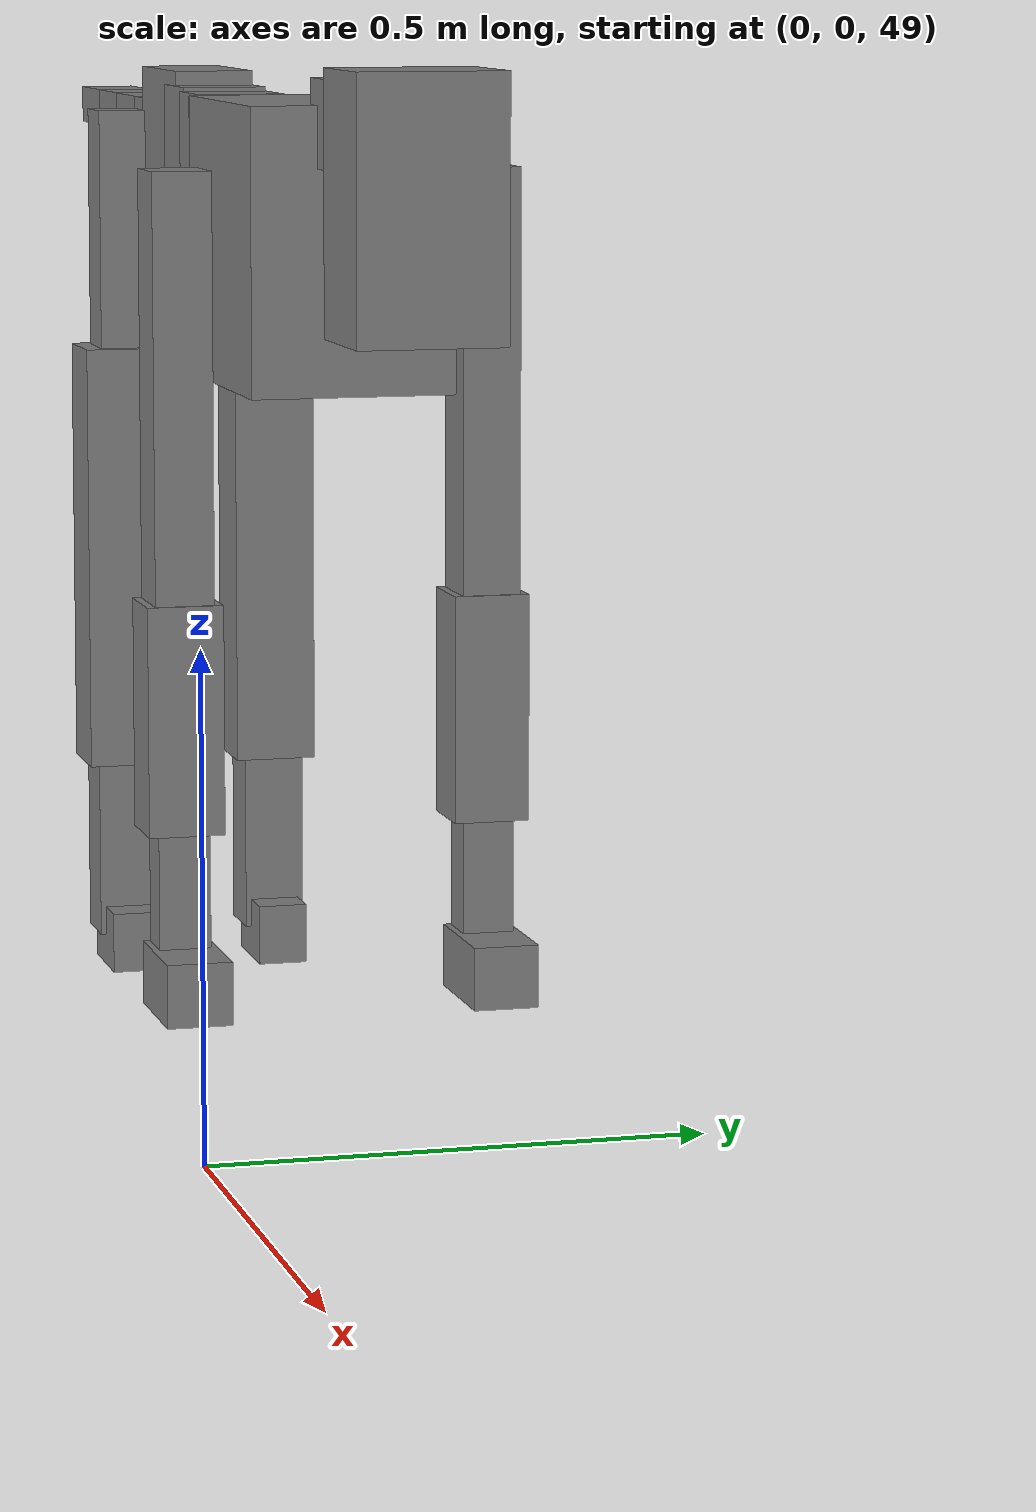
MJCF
<mujoco model="dog">

    <default>
        <joint armature="0.02" stiffness="1" damping="0.2" limited="true"/>
        <geom condim="3" friction="1 0.05 0.05" margin="0.01"/>
        <motor ctrllimited="true" ctrlrange="-1.0 1.0" forcelimited="true" gear="50"/>
    </default>

    <compiler inertiafromgeom="true" angle="radian"/>

    <option timestep="0.016" iterations="50" tolerance="1e-10" solver="Newton" jacobian="dense" cone="pyramidal"/>

    <size nconmax="20000" njmax="60000" nstack="5000000"/>
    <visual>
        <map force="0.1" zfar="30"/>
        <rgba haze="0.15 0.25 0.35 1"/>
        <quality shadowsize="2048"/>
        <global offwidth="800" offheight="800"/>
    </visual>

    <asset>
        <texture type="skybox" builtin="gradient" rgb1="0.3 0.5 0.7" rgb2="0 0 0" width="512" height="512"/>
        <texture name="texplane" type="2d" builtin="checker" rgb1=".2 .3 .4" rgb2=".1 0.15 0.2" width="512" height="512"
                 mark="cross" markrgb=".8 .8 .8"/>
        <texture name="texgeom" type="cube" builtin="flat" mark="cross" width="127" height="1278" rgb1="0.8 0.6 0.4"
                 rgb2="0.8 0.6 0.4" markrgb="1 1 1" random="0.01"/>

        <material name="matplane" reflectance="0.3" texture="texplane" texrepeat="1 1" texuniform="true"/>
        <material name="matgeom" texture="texgeom" texuniform="true" rgba="0.8 0.6 .4 1"/>
    </asset>

    <worldbody>
        <geom name="floor" pos="0 0 0" size="0 0 .25" type="plane" material="matplane" condim="3"/>

        <light directional="false" diffuse=".2 .2 .2" specular="0 0 0" pos="0 0 5" dir="0 0 -1" castshadow="false"/>
        <light mode="targetbodycom" target="torso" directional="false" diffuse=".8 .8 .8" specular="0.3 0.3 0.3"
               pos="0 0 4.0" dir="0 0 -1"/>

        <body name="root" pos="0 0 50">
            <freejoint name="root_1"/>
            <geom type="box" pos="0 0 -0.02" size="0.0774  0.0358  0.063" density="2030"/>

            <body name="spine1" pos="0.054 0 0">
                <joint name="spine1_y" axis="0 1 0" range="0 0.7" limited="true"/>
                <geom type="box" pos="0.02375 0 -0.03" size="0.04375  0.0375  0.05985" density="2030"/>

                <body name="spine2" pos="0.0612 0 0">
                    <joint name="spine2_y" axis="0 1 0" range="-0.15 0.15" limited="true"/>
                    <geom type="box" pos="0.03555  0  -0.04" size="0.04055  0.039  0.06615" density="2030"/>

                    <body name="spine3" pos="0.0730 0 0">
                        <joint name="spine3_y" axis="0 1 0" range="-0.15 0.15" limited="true"/>
                        <geom type="box" pos="0.03555  0  -0.057" size="0.04555  0.0445  0.081" density="2030"/>

                        <body name="spine4" pos="0.0780 0 0">
                            <joint name="spine4_y" axis="0 1 0" range="-0.15 0.15" limited="true"/>
                            <geom type="box" pos="0.05265  0  -0.07" size="0.05265  0.045  0.09135" density="2030"/>

                            <body name="torso" pos="0.1082 0 0">
                                <joint name="torso_y" axis="0 1 0" range="-0.15 0.15" limited="true"/>
                                <geom type="box" pos="0.11925  0  -0.085" size="0.11925  0.085  0.11745"
                                      density="2030"/>

                                <body name="neck1" pos="0.2160  0   0.0180">
                                    <joint name="neck1_y" axis="0 1 0" range="-1.2  -1" limited="true"/>
                                    <geom type="box" pos="0.0423  0  0" size="0.0423  0.03  0.036" density="2325"/>

                                    <body name="neck2" pos="0.0853  0  0">
                                        <joint name="neck2_y" axis="0 1 0" range="0.1  0" limited="true"/>
                                        <geom type="box" pos="0.0423  0  0" size="0.0423  0.03  0.036" density="2325"/>

                                        <body name="head" pos="0.0853  0  0">
                                            <joint name="head_y" axis="0 1 0" range="-0.3  -0.2" limited="true"/>
                                            <geom type="box" pos="0.0531  0  -0.055" size="0.0531  0.06  0.1044"
                                                  density="4030"/>

                                        </body>
                                    </body>
                                </body>

                                <body name="front_shoulder" pos="0.156  0   -0.0480">
                                    <joint name="front_shoulder_y" axis="0 1 0" range="-1 1.5" limited="true"/>
                                    <geom type="box" pos="0 0.13 -0.1640" size="0.0289  0.0247  0.1906" density="1158"/>
                                    <geom type="box" pos="0 -0.13 -0.1640" size="0.0289  0.0247  0.1906"
                                          density="1158"/>

                                    <body name="front_elbow" pos="0  0  -0.3279">
                                        <joint name="front_elbow_y" axis="0 1 0" range="-2 0" limited="true"/>
                                        <geom type="box" pos="0 0.13 -0.0957" size="0.0312  0.0318  0.0957"
                                              density="1081"/>
                                        <geom type="box" pos="0 -0.13 -0.0957" size="0.0312  0.0318  0.0957"
                                              density="1081"/>

                                        <body name="front_wrist" pos="0  0  -0.1914">
                                            <joint name="front_wrist_y" axis="0 1 0" range="-0.2 0" limited="true"/>
                                            <geom type="box" pos="0 0.13 -0.0559" size="0.0195  0.0217  0.0690"
                                                  density="1664"/>
                                            <geom type="box" pos="0 -0.13 -0.0559" size="0.0195  0.0217  0.0690"
                                                  density="1664"/>

                                            <body name="front_finger_end" pos="0  0  -0.1118">
                                                <joint name="front_finger_y" axis="0 1 0" range="-0.4 1"
                                                       limited="true"/>
                                                <geom type="box" pos="0.0275  0.13  -0.0116"
                                                      size="0.0504  0.0275  0.0266" density="1515"/>
                                                <geom type="box" pos="0.0275  -0.13  -0.0116"
                                                      size="0.0504  0.0275  0.0266" density="1515"/>

                                            </body>

                                        </body>
                                    </body>
                                </body>

                            </body>
                        </body>
                    </body>
                </body>
            </body>

            <body name="back_hip" pos="-0.03 0 -0.018">
                <joint name="back_hip_y" axis="0 1 0" range="-1.5 0.3" limited="true"/>
                <geom type="box" pos="0 0.07 -0.1060" size="0.0274  0.0215  0.1288" density="1154"/>
                <geom type="box" pos="0 -0.07 -0.1060" size="0.0274  0.0215  0.1288" density="1154"/>

                <body name="back_knee" pos="0  0  -0.2120">
                    <joint name="back_knee_y" axis="0 1 0" range="0 2.8" limited="true"/>
                    <geom type="box" pos="0 0.07 -0.1800" size="0.0378  0.0372  0.1956" density="1227"/>
                    <geom type="box" pos="0 -0.07 -0.1800" size="0.0378  0.0372  0.1956" density="1227"/>

                    <body name="back_ankle" pos="0  0  -0.3600">
                        <joint name="back_ankle_y" axis="0 1 0" range="-2.2 0" limited="true"/>
                        <geom type="box" pos="0 0.07 -0.0835" size="0.0276  0.0276  0.0947" density="1284"/>
                        <geom type="box" pos="0 -0.07 -0.0835" size="0.0276  0.0276  0.0947" density="1284"/>

                        <body name="back_toe_end" pos="0  0  -0.1669">
                            <joint name="back_toe_y" axis="0 1 0" range="-0.4 1" limited="true"/>
                            <geom type="box" pos="0.0225  0.07  -0.0127" size="0.0412  0.0225  0.0277" density="1515"/>
                            <geom type="box" pos="0.0225  -0.07  -0.0127" size="0.0412  0.0225  0.0277" density="1515"/>

                        </body>
                    </body>
                </body>
            </body>

            <body name="tail1" pos="-0.074 0 -0.006">
                <joint name="tail1_y" axis="0 1 0" range="-0.2 0.2" limited="true"/>
                <geom type="box" pos="-0.0536  0  0" size="0.045  0.025  0.0175" density="1587"/>

                <body name="tail2" pos="-0.09 0 0">
                    <joint name="tail2_y" axis="0 1 0" range="-0.2 0.2" limited="true"/>
                    <geom type="box" pos="-0.0536  0  0" size="0.045  0.025  0.0175" density="1587"/>

                    <body name="tail3" pos="-0.09 0 0">
                        <joint name="tail3_y" axis="0 1 0" range="-0.2 0.2" limited="true"/>
                        <geom type="box" pos="-0.0536  0  0" size="0.045  0.025  0.0175" density="1587"/>

                        <body name="tail4" pos="-0.09 0 0">
                            <joint name="tail4_y" axis="0 1 0" range="-0.2 0.2" limited="true"/>
                            <geom type="box" pos="-0.0536  0  0" size="0.045  0.025  0.0175" density="1587"/>

                        </body>
                    </body>
                </body>
            </body>
        </body>
    </worldbody>

    <actuator>
        <motor joint="spine1_y" forcerange="-150 150     "/>
        <motor joint="spine2_y" forcerange="-150 150     "/>
        <motor joint="spine3_y" forcerange="-150 150     "/>
        <motor joint="spine4_y" forcerange="-150 150     "/>
        <motor joint="torso_y" forcerange="-150 150     "/>
        <motor joint="neck1_y" forcerange="-100 100       "/>
        <motor joint="neck2_y" forcerange="-100 100       "/>
        <motor joint="head_y" forcerange="-150 150       "/>
        <motor joint="front_shoulder_y" forcerange="-105.73 158.86"/>
        <motor joint="front_elbow_y" forcerange="-164.00 167.63"/>
        <motor joint="front_wrist_y" forcerange="-103.37 69.96"/>
        <motor joint="front_finger_y" forcerange="-58.05 48.48"/>
        <motor joint="back_hip_y" forcerange="-232.32 254.59"/>
        <motor joint="back_knee_y" forcerange="-352.72 388.51"/>
        <motor joint="back_angle_y" forcerange="-166.38 174.73"/>
        <motor joint="back_toe_y" forcerange="-64.94 34.72"/>
        <motor joint="tail1_y" forcerange="-50 50     "/>
        <motor joint="tail2_y" forcerange="-50 50     "/>
        <motor joint="tail3_y" forcerange="-50 50     "/>
        <motor joint="tail4_y" forcerange="-50 50     "/>
    </actuator>
</mujoco>
